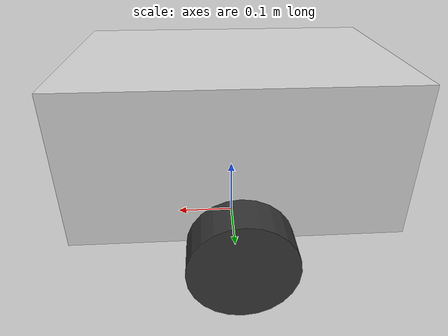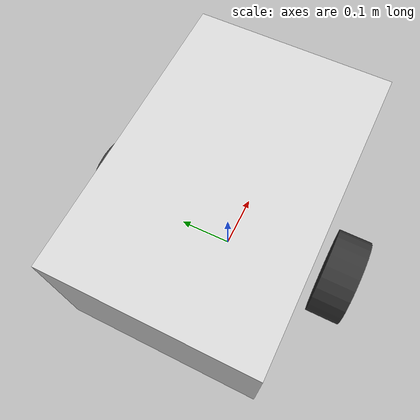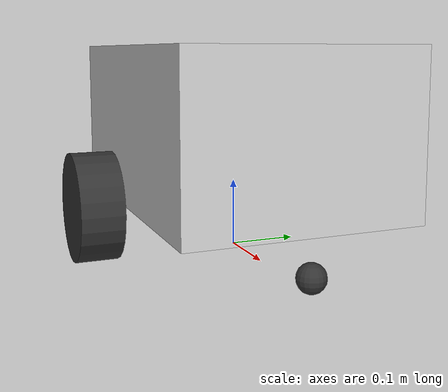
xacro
<?xml version="1.0"?>
<robot xmlns:xacro="http://www.ros.org/wiki/xacro" name="shark">
  <xacro:property name="hardware_type" value="gz_classic" />

  <xacro:include filename="$(find shark_description)/urdf/shark_description.xacro" />

  <xacro:include filename="$(find shark_description)/urdf/shark_materials.xacro" />
  <xacro:if value="${hardware_type == 'actual'}">
    <xacro:include filename="$(find shark_description)/ros2_control/shark_ros2_control.xacro" />
  </xacro:if>
  <xacro:if value="${hardware_type == 'gz_classic'}">
    <xacro:include filename="$(find shark_description)/urdf/shark_v1_gazebo_plugins.xacro" />
  </xacro:if>

</robot>

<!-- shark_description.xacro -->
<robot xmlns:xacro="http://www.ros.org/wiki/xacro" name="shark_description">

  <xacro:property name="base_width" value="0.335" />
  <xacro:property name="base_len" value="0.5" />
  <xacro:property name="base_height" value="0.235" />
  <xacro:property name="wheel_radius" value="0.0775" />
  <xacro:property name="base_wheel_gap" value="0.05" />
  <xacro:property name="wheel_width" value="0.06" />
  <xacro:property name="wheel_separation" value="0.41" />
  <xacro:property name="wheel_joint_offset" value="0.0" />
  <xacro:property name="caster_height" value="0.07" />
  <xacro:property name="caster_wheel_joint_offset" value="0.0" />
  <xacro:property name="caster_wheel_radius" value="0.02" />

  <xacro:macro name="box_inertia" params="m w h d">
    <inertial>
      <mass value="${m}"/>
      <inertia ixx="${m / 12.0 * (d*d + h*h)}" ixy="0.0" ixz="0.0" iyy="${m / 12.0 * (w*w + h*h)}" iyz="0.0" izz="${m / 12.0 * (w*w + d*d)}"/>
    </inertial>
  </xacro:macro>

  <link name="base_footprint">
    <xacro:box_inertia m="8" w="0.001" h="0.001" d="0.001"/>
    <visual>
      <origin xyz="0 0 0" rpy="0 0 0" />
      <material name="white"/>
        <geometry>
            <box size="0.001 0.001 0.001" />
        </geometry>
    </visual>
  </link>

  <link name="base_link">
    <xacro:box_inertia m="1" w="${base_len}" h="${base_width}" d="0.01"/>
    <visual>
      <material name="lightgray"/>
      <geometry>
        <box size="${base_len} ${base_width} ${base_height}"/>
      </geometry>
    </visual>
    <collision>
      <geometry>
        <box size="${base_len} ${base_width} ${base_height}"/>
      </geometry>
    </collision>
  </link>

  <joint name="base_link_joint" type="fixed">
    <origin xyz="0 0 ${base_height/2 + caster_height}" rpy="0 0 0" />
    <parent link="base_footprint"/>
    <child link="base_link" />
  </joint>

  <xacro:macro name="cylinder_inertia" params="m r h">
    <inertial>
      <mass value="${m}"/>
      <inertia ixx="${m*(3*r*r+h*h)/12}" ixy = "0" ixz = "0" iyy="${m*(3*r*r+h*h)/12}" iyz = "0" izz="${m*r*r/2}"/>
    </inertial>
  </xacro:macro>

  <xacro:macro name="wheel" params="prefix reflect">
    <link name="${prefix}_wheel">
      <visual>
	      <material name="darkgray"/>
        <origin xyz="0 0 0" rpy="${pi/2} 0 0"/>
        <geometry>
          <cylinder radius="${wheel_radius}" length="${wheel_width}"/>
        </geometry>
      </visual>
      <collision>
        <origin xyz="0 0 0" rpy="${pi/2} 0 0"/>
        <geometry>
          <cylinder radius="${wheel_radius}" length="0.05"/>
        </geometry>
      </collision>
      <xacro:cylinder_inertia m="10" r="${wheel_radius}" h="0.05"/>
    </link>

    <joint name="${prefix}_wheel_joint" type="continuous">
      <axis xyz="0 1 0" rpy="0 0 0" />
      <parent link="base_link"/>
      <child link="${prefix}_wheel"/>
      <origin xyz="${wheel_joint_offset} ${((base_width/2)+base_wheel_gap)*reflect} ${(wheel_radius - caster_height) - base_height/2}" rpy="0 0 0"/>
    </joint>
  </xacro:macro>

  <xacro:wheel prefix="left" reflect="1"/>
  <xacro:wheel prefix="right" reflect="-1"/>

  <xacro:macro name="sphere_inertia" params="m r">
    <inertial>
      <mass value="${m}"/>
      <inertia ixx="${2.0*m*(r*r)/5.0}" ixy="0.0" ixz="0.0" iyy="${2.0*m*(r*r)/5.0}" iyz="0.0" izz="${2.0*m*(r*r)/5.0}"/>
    </inertial>
  </xacro:macro>

   <link name="caster_wheel">
     <visual>
       <material name="darkgray"/>
      <origin xyz="0 0 0" rpy="0 0 0"/>
      <geometry>
        <sphere radius="${caster_wheel_radius}"/>
      </geometry>
    </visual>
    <collision>
      <origin xyz="0 0 0" rpy="0 0 0"/>
      <geometry>
        <sphere radius="${caster_wheel_radius}"/>
      </geometry>
    </collision>
    <xacro:sphere_inertia m="5" r="${caster_wheel_radius}"/>
  </link>

  <joint name="caster_wheel_joint" type="continuous">
    <axis xyz="0 1 0" rpy="0 0 0" />
    <parent link="base_link"/>
    <child link="caster_wheel"/>
    <origin xyz="${(base_len/2) - caster_wheel_joint_offset} 0 ${(caster_wheel_radius - caster_height) - base_height/2}" rpy="0 0 0"/>
  </joint>

</robot>

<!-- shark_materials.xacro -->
<robot>

  <material name="blue">
    <color rgba="0 0 0.8 1"/>
  </material>
  <material name="black">
    <color rgba="0 0 0 1"/>
  </material>
  <material name="darkgray">
    <color rgba="0.2 0.2 0.2 1"/>
  </material>
  <material name="lightgray">
    <color rgba="0.8 0.8 0.8 1"/>
  </material>
  <material name="white">
    <color rgba="1 1 1 1"/>
  </material>
  <material name="red">
    <color rgba="0.8 0.0 0.0 1.0"/>
  </material>

</robot>
